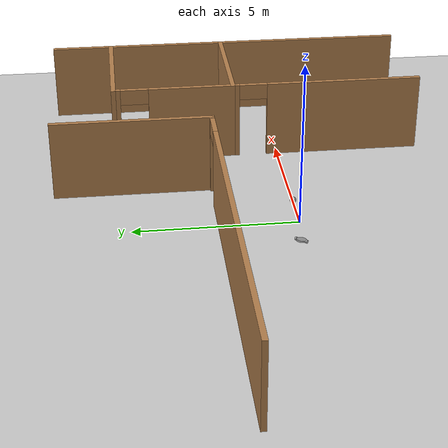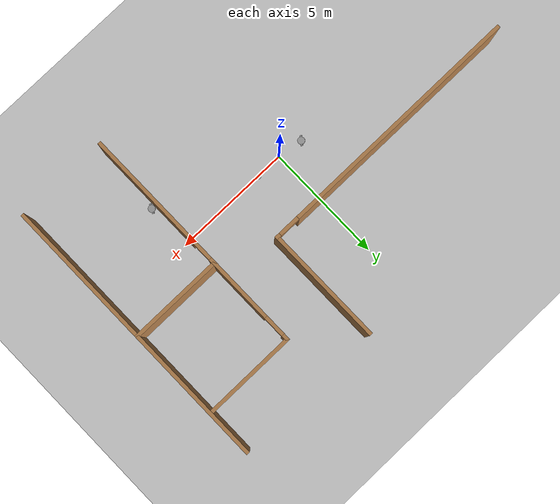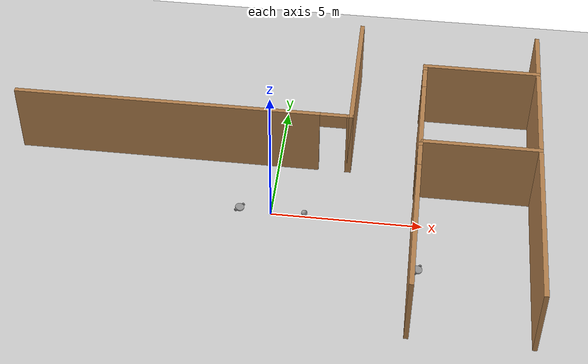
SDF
<sdf version="1.6">
 <world name="default">
  <model name="ground_plane">
   <static>1</static>
   <link name="link">
    <collision name="collision">
     <geometry><plane><normal>0 0 1</normal><size>100 100</size></plane></geometry>
     <surface>
      <contact><collide_bitmask>65535</collide_bitmask></contact>
      <friction><ode><mu>100</mu><mu2>50</mu2></ode></friction>
     </surface>
    </collision>
    <visual name="visual">
     <cast_shadows>0</cast_shadows>
     <geometry><plane><normal>0 0 1</normal><size>100 100</size></plane></geometry>
     <material>
      <script><uri>file://media/materials/scripts/gazebo.material</uri><name>Gazebo/Grey</name></script>
     </material>
    </visual>
   </link>
  </model>
  <model name="CleaningRobot">
   <link name="link_0">
    <pose>-0.003333 3e-06 4e-06 0 -0 0</pose>
    <inertial>
     <mass>1</mass>
     <inertia><ixx>0.145833</ixx><ixy>0</ixy><ixz>0</ixz><iyy>0.145833</iyy><iyz>0</iyz><izz>0.125</izz></inertia>
    </inertial>
    <visual name="visual">
     <geometry><cylinder><radius>0.15</radius><length>0.05</length></cylinder></geometry>
     <material>
      <lighting>1</lighting>
      <script><uri>file://media/materials/scripts/gazebo.material</uri><name>Gazebo/Grey</name></script>
      <shader type="pixel"><normal_map>__default__</normal_map></shader>
      <ambient>0.3 0.3 0.3 1</ambient>
      <diffuse>0.7 0.7 0.7 1</diffuse>
      <specular>0.01 0.01 0.01 1</specular>
      <emissive>0 0 0 1</emissive>
     </material>
    </visual>
    <collision name="collision">
     <geometry><cylinder><radius>0.15</radius><length>0.05</length></cylinder></geometry>
     <surface>
      <friction>
       <ode><mu>1</mu><mu2>1</mu2><fdir1>0 0 0</fdir1><slip1>0</slip1><slip2>0</slip2></ode>
       <torsional>
        <coefficient>1</coefficient>
        <patch_radius>0</patch_radius>
        <surface_radius>0</surface_radius>
        <use_patch_radius>1</use_patch_radius>
        <ode><slip>0</slip></ode>
       </torsional>
      </friction>
      <bounce><restitution_coefficient>0</restitution_coefficient><threshold>1e+06</threshold></bounce>
      <contact>
       <collide_without_contact>0</collide_without_contact>
       <collide_without_contact_bitmask>1</collide_without_contact_bitmask>
       <collide_bitmask>1</collide_bitmask>
       <ode>
        <soft_cfm>0</soft_cfm>
        <soft_erp>0.2</soft_erp>
        <kp>1e+13</kp>
        <kd>1</kd>
        <max_vel>0.01</max_vel>
        <min_depth>0</min_depth>
       </ode>
       <bullet>
        <split_impulse>1</split_impulse>
        <split_impulse_penetration_threshold>-0.01</split_impulse_penetration_threshold>
        <soft_cfm>0</soft_cfm>
        <soft_erp>0.2</soft_erp>
        <kp>1e+13</kp>
        <kd>1</kd>
       </bullet>
      </contact>
     </surface>
    </collision>
   </link>
   <link name="link_1">
    <pose>0.006667 -0.175011 -1e-05 1.5707 -0 0</pose>
    <inertial>
     <mass>1</mass>
     <inertia><ixx>0.145833</ixx><ixy>0</ixy><ixz>0</ixz><iyy>0.145833</iyy><iyz>0</iyz><izz>0.125</izz></inertia>
    </inertial>
    <visual name="visual">
     <geometry><cylinder><radius>0.05</radius><length>0.05</length></cylinder></geometry>
     <material>
      <lighting>1</lighting>
      <script><uri>file://media/materials/scripts/gazebo.material</uri><name>Gazebo/Grey</name></script>
      <shader type="pixel"><normal_map>__default__</normal_map></shader>
      <ambient>0.3 0.3 0.3 1</ambient>
      <diffuse>0.7 0.7 0.7 1</diffuse>
      <specular>0.01 0.01 0.01 1</specular>
      <emissive>0 0 0 1</emissive>
     </material>
    </visual>
    <collision name="collision">
     <geometry><cylinder><radius>0.05</radius><length>0.05</length></cylinder></geometry>
     <surface>
      <friction>
       <ode><mu>1</mu><mu2>1</mu2><fdir1>0 0 0</fdir1><slip1>0</slip1><slip2>0</slip2></ode>
       <torsional>
        <coefficient>1</coefficient>
        <patch_radius>0</patch_radius>
        <surface_radius>0</surface_radius>
        <use_patch_radius>1</use_patch_radius>
        <ode><slip>0</slip></ode>
       </torsional>
      </friction>
      <bounce><restitution_coefficient>0</restitution_coefficient><threshold>1e+06</threshold></bounce>
      <contact>
       <collide_without_contact>0</collide_without_contact>
       <collide_without_contact_bitmask>1</collide_without_contact_bitmask>
       <collide_bitmask>1</collide_bitmask>
       <ode>
        <soft_cfm>0</soft_cfm>
        <soft_erp>0.2</soft_erp>
        <kp>1e+13</kp>
        <kd>1</kd>
        <max_vel>0.01</max_vel>
        <min_depth>0</min_depth>
       </ode>
       <bullet>
        <split_impulse>1</split_impulse>
        <split_impulse_penetration_threshold>-0.01</split_impulse_penetration_threshold>
        <soft_cfm>0</soft_cfm>
        <soft_erp>0.2</soft_erp>
        <kp>1e+13</kp>
        <kd>1</kd>
       </bullet>
      </contact>
     </surface>
    </collision>
   </link>
   <link name="link_1_clone">
    <pose>-0.003333 0.175008 6e-06 1.5707 -0 0</pose>
    <inertial>
     <mass>1</mass>
     <inertia><ixx>0.145833</ixx><ixy>0</ixy><ixz>0</ixz><iyy>0.145833</iyy><iyz>0</iyz><izz>0.125</izz></inertia>
    </inertial>
    <visual name="visual">
     <geometry><cylinder><radius>0.05</radius><length>0.05</length></cylinder></geometry>
     <material>
      <lighting>1</lighting>
      <script><uri>file://media/materials/scripts/gazebo.material</uri><name>Gazebo/Grey</name></script>
      <shader type="pixel"><normal_map>__default__</normal_map></shader>
      <ambient>0.3 0.3 0.3 1</ambient>
      <diffuse>0.7 0.7 0.7 1</diffuse>
      <specular>0.01 0.01 0.01 1</specular>
      <emissive>0 0 0 1</emissive>
     </material>
    </visual>
    <collision name="collision">
     <geometry><cylinder><radius>0.05</radius><length>0.05</length></cylinder></geometry>
     <surface>
      <friction>
       <ode><mu>1</mu><mu2>1</mu2><fdir1>0 0 0</fdir1><slip1>0</slip1><slip2>0</slip2></ode>
       <torsional>
        <coefficient>1</coefficient>
        <patch_radius>0</patch_radius>
        <surface_radius>0</surface_radius>
        <use_patch_radius>1</use_patch_radius>
        <ode><slip>0</slip></ode>
       </torsional>
      </friction>
      <bounce><restitution_coefficient>0</restitution_coefficient><threshold>1e+06</threshold></bounce>
      <contact>
       <collide_without_contact>0</collide_without_contact>
       <collide_without_contact_bitmask>1</collide_without_contact_bitmask>
       <collide_bitmask>1</collide_bitmask>
       <ode>
        <soft_cfm>0</soft_cfm>
        <soft_erp>0.2</soft_erp>
        <kp>1e+13</kp>
        <kd>1</kd>
        <max_vel>0.01</max_vel>
        <min_depth>0</min_depth>
       </ode>
       <bullet>
        <split_impulse>1</split_impulse>
        <split_impulse_penetration_threshold>-0.01</split_impulse_penetration_threshold>
        <soft_cfm>0</soft_cfm>
        <soft_erp>0.2</soft_erp>
        <kp>1e+13</kp>
        <kd>1</kd>
       </bullet>
      </contact>
     </surface>
    </collision>
   </link>
   <joint name="link_0_JOINT_0" type="revolute">
    <parent>link_0</parent>
    <child>link_1</child>
    <axis>
     <xyz>0 0 1</xyz>
     <use_parent_model_frame>0</use_parent_model_frame>
     <limit>
      <lower>-1.79769e+308</lower>
      <upper>1.79769e+308</upper>
      <effort>-1</effort>
      <velocity>-1</velocity>
     </limit>
     <dynamics>
      <spring_reference>0</spring_reference>
      <spring_stiffness>0</spring_stiffness>
      <damping>0</damping>
     </dynamics>
    </axis>
    <physics>
     <ode><limit><cfm>0</cfm><erp>0.2</erp></limit><suspension><cfm>0</cfm><erp>0.2</erp></suspension></ode>
    </physics>
   </joint>
   <joint name="link_0_JOINT_1" type="revolute">
    <parent>link_0</parent>
    <child>link_1_clone</child>
    <axis>
     <xyz>0 0 1</xyz>
     <use_parent_model_frame>0</use_parent_model_frame>
     <limit>
      <lower>-1.79769e+308</lower>
      <upper>1.79769e+308</upper>
      <effort>-1</effort>
      <velocity>-1</velocity>
     </limit>
     <dynamics>
      <spring_reference>0</spring_reference>
      <spring_stiffness>0</spring_stiffness>
      <damping>0</damping>
     </dynamics>
    </axis>
    <physics>
     <ode><limit><cfm>0</cfm><erp>0.2</erp></limit><suspension><cfm>0</cfm><erp>0.2</erp></suspension></ode>
    </physics>
   </joint>
   <static>0</static>
   <pose>4.93887 -1.93202 0.049842 0.004688 -0.163996 2.67363</pose>
  </model>
  <model name="Building">
   <link name="Wall_20">
    <pose>12.425 0.0045 0 0 0 -1.5708</pose>
    <visual name="Wall_20_Visual">
     <pose>0 0 1.25 0 -0 0</pose>
     <geometry><box><size>12 0.15 2.5</size></box></geometry>
     <material>
      <script><uri>file://media/materials/scripts/gazebo.material</uri><name>Gazebo/Wood</name></script>
      <ambient>1 1 1 1</ambient>
      <shader type="pixel"/>
      <diffuse>1 1 1 1</diffuse>
      <specular>0.2 0.2 0.2 1</specular>
      <emissive>0 0 0 1</emissive>
     </material>
     <meta><layer>0</layer></meta>
    </visual>
    <collision name="Wall_20_Collision">
     <pose>0 0 1.25 0 -0 0</pose>
     <geometry><box><size>12 0.15 2.5</size></box></geometry>
     <surface>
      <friction>
       <ode><mu>1</mu><mu2>1</mu2><fdir1>0 0 0</fdir1><slip1>0</slip1><slip2>0</slip2></ode>
       <torsional>
        <coefficient>1</coefficient>
        <patch_radius>0</patch_radius>
        <surface_radius>0</surface_radius>
        <use_patch_radius>1</use_patch_radius>
        <ode><slip>0</slip></ode>
       </torsional>
      </friction>
      <bounce><restitution_coefficient>0</restitution_coefficient><threshold>1e+06</threshold></bounce>
      <contact>
       <collide_without_contact>0</collide_without_contact>
       <collide_without_contact_bitmask>1</collide_without_contact_bitmask>
       <collide_bitmask>1</collide_bitmask>
       <ode>
        <soft_cfm>0</soft_cfm>
        <soft_erp>0.2</soft_erp>
        <kp>1e+13</kp>
        <kd>1</kd>
        <max_vel>0.01</max_vel>
        <min_depth>0</min_depth>
       </ode>
       <bullet>
        <split_impulse>1</split_impulse>
        <split_impulse_penetration_threshold>-0.01</split_impulse_penetration_threshold>
        <soft_cfm>0</soft_cfm>
        <soft_erp>0.2</soft_erp>
        <kp>1e+13</kp>
        <kd>1</kd>
       </bullet>
      </contact>
     </surface>
    </collision>
   </link>
   <link name="Wall_32">
    <pose>10.49 4.0205 0 0 -0 3.14159</pose>
    <visual name="Wall_32_Visual">
     <pose>0 0 1.25 0 -0 0</pose>
     <geometry><box><size>4 0.15 2.5</size></box></geometry>
     <material>
      <script><uri>file://media/materials/scripts/gazebo.material</uri><name>Gazebo/Wood</name></script>
      <ambient>1 1 1 1</ambient>
      <shader type="pixel"/>
      <diffuse>1 1 1 1</diffuse>
      <specular>0.2 0.2 0.2 1</specular>
      <emissive>0 0 0 1</emissive>
     </material>
     <meta><layer>0</layer></meta>
    </visual>
    <collision name="Wall_32_Collision">
     <pose>0 0 1.25 0 -0 0</pose>
     <geometry><box><size>4 0.15 2.5</size></box></geometry>
     <surface>
      <friction>
       <ode><mu>1</mu><mu2>1</mu2><fdir1>0 0 0</fdir1><slip1>0</slip1><slip2>0</slip2></ode>
       <torsional>
        <coefficient>1</coefficient>
        <patch_radius>0</patch_radius>
        <surface_radius>0</surface_radius>
        <use_patch_radius>1</use_patch_radius>
        <ode><slip>0</slip></ode>
       </torsional>
      </friction>
      <bounce><restitution_coefficient>0</restitution_coefficient><threshold>1e+06</threshold></bounce>
      <contact>
       <collide_without_contact>0</collide_without_contact>
       <collide_without_contact_bitmask>1</collide_without_contact_bitmask>
       <collide_bitmask>1</collide_bitmask>
       <ode>
        <soft_cfm>0</soft_cfm>
        <soft_erp>0.2</soft_erp>
        <kp>1e+13</kp>
        <kd>1</kd>
        <max_vel>0.01</max_vel>
        <min_depth>0</min_depth>
       </ode>
       <bullet>
        <split_impulse>1</split_impulse>
        <split_impulse_penetration_threshold>-0.01</split_impulse_penetration_threshold>
        <soft_cfm>0</soft_cfm>
        <soft_erp>0.2</soft_erp>
        <kp>1e+13</kp>
        <kd>1</kd>
       </bullet>
      </contact>
     </surface>
    </collision>
   </link>
   <link name="Wall_33">
    <pose>8.565 2.0955 0 0 0 -1.5708</pose>
    <visual name="Wall_33_Visual_2">
     <pose>-1.25392 0 2.25 0 -0 0</pose>
     <geometry><box><size>0.9 0.15 0.5</size></box></geometry>
     <material>
      <script><uri>file://media/materials/scripts/gazebo.material</uri><name>Gazebo/Wood</name></script>
      <ambient>1 1 1 1</ambient>
      <shader type="pixel"/>
      <diffuse>1 1 1 1</diffuse>
      <specular>0.2 0.2 0.2 1</specular>
      <emissive>0 0 0 1</emissive>
     </material>
     <meta><layer>0</layer></meta>
    </visual>
    <visual name="Wall_33_Visual_1">
     <pose>0.59804 0 1.25 0 -0 0</pose>
     <geometry><box><size>2.80392 0.15 2.5</size></box></geometry>
     <material>
      <script><uri>file://media/materials/scripts/gazebo.material</uri><name>Gazebo/Wood</name></script>
      <ambient>1 1 1 1</ambient>
      <shader type="pixel"/>
      <diffuse>1 1 1 1</diffuse>
      <specular>0.2 0.2 0.2 1</specular>
      <emissive>0 0 0 1</emissive>
     </material>
     <meta><layer>0</layer></meta>
    </visual>
    <visual name="Wall_33_Visual_0">
     <pose>-1.85196 0 1.25 0 -0 0</pose>
     <geometry><box><size>0.29608 0.15 2.5</size></box></geometry>
     <material>
      <script><uri>file://media/materials/scripts/gazebo.material</uri><name>Gazebo/Wood</name></script>
      <ambient>1 1 1 1</ambient>
      <shader type="pixel"/>
      <diffuse>1 1 1 1</diffuse>
      <specular>0.2 0.2 0.2 1</specular>
      <emissive>0 0 0 1</emissive>
     </material>
     <meta><layer>0</layer></meta>
    </visual>
    <collision name="Wall_33_Collision_0">
     <pose>-1.85196 0 1.25 0 -0 0</pose>
     <geometry><box><size>0.29608 0.15 2.5</size></box></geometry>
     <surface>
      <friction>
       <ode><mu>1</mu><mu2>1</mu2><fdir1>0 0 0</fdir1><slip1>0</slip1><slip2>0</slip2></ode>
       <torsional>
        <coefficient>1</coefficient>
        <patch_radius>0</patch_radius>
        <surface_radius>0</surface_radius>
        <use_patch_radius>1</use_patch_radius>
        <ode><slip>0</slip></ode>
       </torsional>
      </friction>
      <bounce><restitution_coefficient>0</restitution_coefficient><threshold>1e+06</threshold></bounce>
      <contact>
       <collide_without_contact>0</collide_without_contact>
       <collide_without_contact_bitmask>1</collide_without_contact_bitmask>
       <collide_bitmask>1</collide_bitmask>
       <ode>
        <soft_cfm>0</soft_cfm>
        <soft_erp>0.2</soft_erp>
        <kp>1e+13</kp>
        <kd>1</kd>
        <max_vel>0.01</max_vel>
        <min_depth>0</min_depth>
       </ode>
       <bullet>
        <split_impulse>1</split_impulse>
        <split_impulse_penetration_threshold>-0.01</split_impulse_penetration_threshold>
        <soft_cfm>0</soft_cfm>
        <soft_erp>0.2</soft_erp>
        <kp>1e+13</kp>
        <kd>1</kd>
       </bullet>
      </contact>
     </surface>
    </collision>
    <collision name="Wall_33_Collision_2">
     <pose>-1.25392 0 2.25 0 -0 0</pose>
     <geometry><box><size>0.9 0.15 0.5</size></box></geometry>
     <surface>
      <friction>
       <ode><mu>1</mu><mu2>1</mu2><fdir1>0 0 0</fdir1><slip1>0</slip1><slip2>0</slip2></ode>
       <torsional>
        <coefficient>1</coefficient>
        <patch_radius>0</patch_radius>
        <surface_radius>0</surface_radius>
        <use_patch_radius>1</use_patch_radius>
        <ode><slip>0</slip></ode>
       </torsional>
      </friction>
      <bounce><restitution_coefficient>0</restitution_coefficient><threshold>1e+06</threshold></bounce>
      <contact>
       <collide_without_contact>0</collide_without_contact>
       <collide_without_contact_bitmask>1</collide_without_contact_bitmask>
       <collide_bitmask>1</collide_bitmask>
       <ode>
        <soft_cfm>0</soft_cfm>
        <soft_erp>0.2</soft_erp>
        <kp>1e+13</kp>
        <kd>1</kd>
        <max_vel>0.01</max_vel>
        <min_depth>0</min_depth>
       </ode>
       <bullet>
        <split_impulse>1</split_impulse>
        <split_impulse_penetration_threshold>-0.01</split_impulse_penetration_threshold>
        <soft_cfm>0</soft_cfm>
        <soft_erp>0.2</soft_erp>
        <kp>1e+13</kp>
        <kd>1</kd>
       </bullet>
      </contact>
     </surface>
    </collision>
    <collision name="Wall_33_Collision_1">
     <pose>0.59804 0 1.25 0 -0 0</pose>
     <geometry><box><size>2.80392 0.15 2.5</size></box></geometry>
     <surface>
      <friction>
       <ode><mu>1</mu><mu2>1</mu2><fdir1>0 0 0</fdir1><slip1>0</slip1><slip2>0</slip2></ode>
       <torsional>
        <coefficient>1</coefficient>
        <patch_radius>0</patch_radius>
        <surface_radius>0</surface_radius>
        <use_patch_radius>1</use_patch_radius>
        <ode><slip>0</slip></ode>
       </torsional>
      </friction>
      <bounce><restitution_coefficient>0</restitution_coefficient><threshold>1e+06</threshold></bounce>
      <contact>
       <collide_without_contact>0</collide_without_contact>
       <collide_without_contact_bitmask>1</collide_without_contact_bitmask>
       <collide_bitmask>1</collide_bitmask>
       <ode>
        <soft_cfm>0</soft_cfm>
        <soft_erp>0.2</soft_erp>
        <kp>1e+13</kp>
        <kd>1</kd>
        <max_vel>0.01</max_vel>
        <min_depth>0</min_depth>
       </ode>
       <bullet>
        <split_impulse>1</split_impulse>
        <split_impulse_penetration_threshold>-0.01</split_impulse_penetration_threshold>
        <soft_cfm>0</soft_cfm>
        <soft_erp>0.2</soft_erp>
        <kp>1e+13</kp>
        <kd>1</kd>
       </bullet>
      </contact>
     </surface>
    </collision>
   </link>
   <link name="Wall_34">
    <pose>10.49 0.1705 0 0 -0 0</pose>
    <visual name="Wall_34_Visual">
     <pose>0 0 1.25 0 -0 0</pose>
     <geometry><box><size>4 0.15 2.5</size></box></geometry>
     <material>
      <script><uri>file://media/materials/scripts/gazebo.material</uri><name>Gazebo/Wood</name></script>
      <ambient>1 1 1 1</ambient>
      <shader type="pixel"/>
      <diffuse>1 1 1 1</diffuse>
      <specular>0.2 0.2 0.2 1</specular>
      <emissive>0 0 0 1</emissive>
     </material>
     <meta><layer>0</layer></meta>
    </visual>
    <collision name="Wall_34_Collision">
     <pose>0 0 1.25 0 -0 0</pose>
     <geometry><box><size>4 0.15 2.5</size></box></geometry>
     <surface>
      <friction>
       <ode><mu>1</mu><mu2>1</mu2><fdir1>0 0 0</fdir1><slip1>0</slip1><slip2>0</slip2></ode>
       <torsional>
        <coefficient>1</coefficient>
        <patch_radius>0</patch_radius>
        <surface_radius>0</surface_radius>
        <use_patch_radius>1</use_patch_radius>
        <ode><slip>0</slip></ode>
       </torsional>
      </friction>
      <bounce><restitution_coefficient>0</restitution_coefficient><threshold>1e+06</threshold></bounce>
      <contact>
       <collide_without_contact>0</collide_without_contact>
       <collide_without_contact_bitmask>1</collide_without_contact_bitmask>
       <collide_bitmask>1</collide_bitmask>
       <ode>
        <soft_cfm>0</soft_cfm>
        <soft_erp>0.2</soft_erp>
        <kp>1e+13</kp>
        <kd>1</kd>
        <max_vel>0.01</max_vel>
        <min_depth>0</min_depth>
       </ode>
       <bullet>
        <split_impulse>1</split_impulse>
        <split_impulse_penetration_threshold>-0.01</split_impulse_penetration_threshold>
        <soft_cfm>0</soft_cfm>
        <soft_erp>0.2</soft_erp>
        <kp>1e+13</kp>
        <kd>1</kd>
       </bullet>
      </contact>
     </surface>
    </collision>
   </link>
   <link name="Wall_38">
    <pose>8.565 -2.8795 0 0 0 -1.5708</pose>
    <visual name="Wall_38_Visual_0">
     <pose>-2.97805 0 1.25 0 -0 0</pose>
     <geometry><box><size>0.293894 0.15 2.5</size></box></geometry>
     <material>
      <script><uri>file://media/materials/scripts/gazebo.material</uri><name>Gazebo/Wood</name></script>
      <ambient>1 1 1 1</ambient>
      <shader type="pixel"/>
      <diffuse>1 1 1 1</diffuse>
      <specular>0.2 0.2 0.2 1</specular>
      <emissive>0 0 0 1</emissive>
     </material>
     <meta><layer>0</layer></meta>
    </visual>
    <visual name="Wall_38_Visual_2">
     <pose>-2.38111 0 2.25 0 -0 0</pose>
     <geometry><box><size>0.9 0.15 0.5</size></box></geometry>
     <material>
      <script><uri>file://media/materials/scripts/gazebo.material</uri><name>Gazebo/Wood</name></script>
      <ambient>1 1 1 1</ambient>
      <shader type="pixel"/>
      <diffuse>1 1 1 1</diffuse>
      <specular>0.2 0.2 0.2 1</specular>
      <emissive>0 0 0 1</emissive>
     </material>
     <meta><layer>0</layer></meta>
    </visual>
    <visual name="Wall_38_Visual_1">
     <pose>0.596947 0 1.25 0 -0 0</pose>
     <geometry><box><size>5.05611 0.15 2.5</size></box></geometry>
     <material>
      <script><uri>file://media/materials/scripts/gazebo.material</uri><name>Gazebo/Wood</name></script>
      <ambient>1 1 1 1</ambient>
      <shader type="pixel"/>
      <diffuse>1 1 1 1</diffuse>
      <specular>0.2 0.2 0.2 1</specular>
      <emissive>0 0 0 1</emissive>
     </material>
     <meta><layer>0</layer></meta>
    </visual>
    <collision name="Wall_38_Collision_1">
     <pose>0.596947 0 1.25 0 -0 0</pose>
     <geometry><box><size>5.05611 0.15 2.5</size></box></geometry>
     <surface>
      <friction>
       <ode><mu>1</mu><mu2>1</mu2><fdir1>0 0 0</fdir1><slip1>0</slip1><slip2>0</slip2></ode>
       <torsional>
        <coefficient>1</coefficient>
        <patch_radius>0</patch_radius>
        <surface_radius>0</surface_radius>
        <use_patch_radius>1</use_patch_radius>
        <ode><slip>0</slip></ode>
       </torsional>
      </friction>
      <bounce><restitution_coefficient>0</restitution_coefficient><threshold>1e+06</threshold></bounce>
      <contact>
       <collide_without_contact>0</collide_without_contact>
       <collide_without_contact_bitmask>1</collide_without_contact_bitmask>
       <collide_bitmask>1</collide_bitmask>
       <ode>
        <soft_cfm>0</soft_cfm>
        <soft_erp>0.2</soft_erp>
        <kp>1e+13</kp>
        <kd>1</kd>
        <max_vel>0.01</max_vel>
        <min_depth>0</min_depth>
       </ode>
       <bullet>
        <split_impulse>1</split_impulse>
        <split_impulse_penetration_threshold>-0.01</split_impulse_penetration_threshold>
        <soft_cfm>0</soft_cfm>
        <soft_erp>0.2</soft_erp>
        <kp>1e+13</kp>
        <kd>1</kd>
       </bullet>
      </contact>
     </surface>
    </collision>
    <collision name="Wall_38_Collision_2">
     <pose>-2.38111 0 2.25 0 -0 0</pose>
     <geometry><box><size>0.9 0.15 0.5</size></box></geometry>
     <surface>
      <friction>
       <ode><mu>1</mu><mu2>1</mu2><fdir1>0 0 0</fdir1><slip1>0</slip1><slip2>0</slip2></ode>
       <torsional>
        <coefficient>1</coefficient>
        <patch_radius>0</patch_radius>
        <surface_radius>0</surface_radius>
        <use_patch_radius>1</use_patch_radius>
        <ode><slip>0</slip></ode>
       </torsional>
      </friction>
      <bounce><restitution_coefficient>0</restitution_coefficient><threshold>1e+06</threshold></bounce>
      <contact>
       <collide_without_contact>0</collide_without_contact>
       <collide_without_contact_bitmask>1</collide_without_contact_bitmask>
       <collide_bitmask>1</collide_bitmask>
       <ode>
        <soft_cfm>0</soft_cfm>
        <soft_erp>0.2</soft_erp>
        <kp>1e+13</kp>
        <kd>1</kd>
        <max_vel>0.01</max_vel>
        <min_depth>0</min_depth>
       </ode>
       <bullet>
        <split_impulse>1</split_impulse>
        <split_impulse_penetration_threshold>-0.01</split_impulse_penetration_threshold>
        <soft_cfm>0</soft_cfm>
        <soft_erp>0.2</soft_erp>
        <kp>1e+13</kp>
        <kd>1</kd>
       </bullet>
      </contact>
     </surface>
    </collision>
    <collision name="Wall_38_Collision_0">
     <pose>-2.97805 0 1.25 0 -0 0</pose>
     <geometry><box><size>0.293894 0.15 2.5</size></box></geometry>
     <surface>
      <friction>
       <ode><mu>1</mu><mu2>1</mu2><fdir1>0 0 0</fdir1><slip1>0</slip1><slip2>0</slip2></ode>
       <torsional>
        <coefficient>1</coefficient>
        <patch_radius>0</patch_radius>
        <surface_radius>0</surface_radius>
        <use_patch_radius>1</use_patch_radius>
        <ode><slip>0</slip></ode>
       </torsional>
      </friction>
      <bounce><restitution_coefficient>0</restitution_coefficient><threshold>1e+06</threshold></bounce>
      <contact>
       <collide_without_contact>0</collide_without_contact>
       <collide_without_contact_bitmask>1</collide_without_contact_bitmask>
       <collide_bitmask>1</collide_bitmask>
       <ode>
        <soft_cfm>0</soft_cfm>
        <soft_erp>0.2</soft_erp>
        <kp>1e+13</kp>
        <kd>1</kd>
        <max_vel>0.01</max_vel>
        <min_depth>0</min_depth>
       </ode>
       <bullet>
        <split_impulse>1</split_impulse>
        <split_impulse_penetration_threshold>-0.01</split_impulse_penetration_threshold>
        <soft_cfm>0</soft_cfm>
        <soft_erp>0.2</soft_erp>
        <kp>1e+13</kp>
        <kd>1</kd>
       </bullet>
      </contact>
     </surface>
    </collision>
   </link>
   <link name="Wall_65">
    <pose>0.564 1.0795 0 0 -0 0</pose>
    <visual name="Wall_65_Visual_0">
     <pose>-0.558207 0 1.25 0 -0 0</pose>
     <geometry><box><size>10.3836 0.15 2.5</size></box></geometry>
     <material>
      <script><uri>file://media/materials/scripts/gazebo.material</uri><name>Gazebo/Wood</name></script>
      <ambient>1 1 1 1</ambient>
      <shader type="pixel"/>
      <diffuse>1 1 1 1</diffuse>
      <specular>0.2 0.2 0.2 1</specular>
      <emissive>0 0 0 1</emissive>
     </material>
     <meta><layer>0</layer></meta>
    </visual>
    <visual name="Wall_65_Visual_1">
     <pose>5.64179 0 1.25 0 -0 0</pose>
     <geometry><box><size>0.216415 0.15 2.5</size></box></geometry>
     <material>
      <script><uri>file://media/materials/scripts/gazebo.material</uri><name>Gazebo/Wood</name></script>
      <ambient>1 1 1 1</ambient>
      <shader type="pixel"/>
      <diffuse>1 1 1 1</diffuse>
      <specular>0.2 0.2 0.2 1</specular>
      <emissive>0 0 0 1</emissive>
     </material>
     <meta><layer>0</layer></meta>
    </visual>
    <visual name="Wall_65_Visual_2">
     <pose>5.08359 0 2.25 0 -0 0</pose>
     <geometry><box><size>0.9 0.15 0.5</size></box></geometry>
     <material>
      <script><uri>file://media/materials/scripts/gazebo.material</uri><name>Gazebo/Wood</name></script>
      <ambient>1 1 1 1</ambient>
      <shader type="pixel"/>
      <diffuse>1 1 1 1</diffuse>
      <specular>0.2 0.2 0.2 1</specular>
      <emissive>0 0 0 1</emissive>
     </material>
     <meta><layer>0</layer></meta>
    </visual>
    <collision name="Wall_65_Collision_0">
     <pose>-0.558207 0 1.25 0 -0 0</pose>
     <geometry><box><size>10.3836 0.15 2.5</size></box></geometry>
     <surface>
      <friction>
       <ode><mu>1</mu><mu2>1</mu2><fdir1>0 0 0</fdir1><slip1>0</slip1><slip2>0</slip2></ode>
       <torsional>
        <coefficient>1</coefficient>
        <patch_radius>0</patch_radius>
        <surface_radius>0</surface_radius>
        <use_patch_radius>1</use_patch_radius>
        <ode><slip>0</slip></ode>
       </torsional>
      </friction>
      <bounce><restitution_coefficient>0</restitution_coefficient><threshold>1e+06</threshold></bounce>
      <contact>
       <collide_without_contact>0</collide_without_contact>
       <collide_without_contact_bitmask>1</collide_without_contact_bitmask>
       <collide_bitmask>1</collide_bitmask>
       <ode>
        <soft_cfm>0</soft_cfm>
        <soft_erp>0.2</soft_erp>
        <kp>1e+13</kp>
        <kd>1</kd>
        <max_vel>0.01</max_vel>
        <min_depth>0</min_depth>
       </ode>
       <bullet>
        <split_impulse>1</split_impulse>
        <split_impulse_penetration_threshold>-0.01</split_impulse_penetration_threshold>
        <soft_cfm>0</soft_cfm>
        <soft_erp>0.2</soft_erp>
        <kp>1e+13</kp>
        <kd>1</kd>
       </bullet>
      </contact>
     </surface>
    </collision>
    <collision name="Wall_65_Collision_1">
     <pose>5.64179 0 1.25 0 -0 0</pose>
     <geometry><box><size>0.216415 0.15 2.5</size></box></geometry>
     <surface>
      <friction>
       <ode><mu>1</mu><mu2>1</mu2><fdir1>0 0 0</fdir1><slip1>0</slip1><slip2>0</slip2></ode>
       <torsional>
        <coefficient>1</coefficient>
        <patch_radius>0</patch_radius>
        <surface_radius>0</surface_radius>
        <use_patch_radius>1</use_patch_radius>
        <ode><slip>0</slip></ode>
       </torsional>
      </friction>
      <bounce><restitution_coefficient>0</restitution_coefficient><threshold>1e+06</threshold></bounce>
      <contact>
       <collide_without_contact>0</collide_without_contact>
       <collide_without_contact_bitmask>1</collide_without_contact_bitmask>
       <collide_bitmask>1</collide_bitmask>
       <ode>
        <soft_cfm>0</soft_cfm>
        <soft_erp>0.2</soft_erp>
        <kp>1e+13</kp>
        <kd>1</kd>
        <max_vel>0.01</max_vel>
        <min_depth>0</min_depth>
       </ode>
       <bullet>
        <split_impulse>1</split_impulse>
        <split_impulse_penetration_threshold>-0.01</split_impulse_penetration_threshold>
        <soft_cfm>0</soft_cfm>
        <soft_erp>0.2</soft_erp>
        <kp>1e+13</kp>
        <kd>1</kd>
       </bullet>
      </contact>
     </surface>
    </collision>
    <collision name="Wall_65_Collision_2">
     <pose>5.08359 0 2.25 0 -0 0</pose>
     <geometry><box><size>0.9 0.15 0.5</size></box></geometry>
     <surface>
      <friction>
       <ode><mu>1</mu><mu2>1</mu2><fdir1>0 0 0</fdir1><slip1>0</slip1><slip2>0</slip2></ode>
       <torsional>
        <coefficient>1</coefficient>
        <patch_radius>0</patch_radius>
        <surface_radius>0</surface_radius>
        <use_patch_radius>1</use_patch_radius>
        <ode><slip>0</slip></ode>
       </torsional>
      </friction>
      <bounce><restitution_coefficient>0</restitution_coefficient><threshold>1e+06</threshold></bounce>
      <contact>
       <collide_without_contact>0</collide_without_contact>
       <collide_without_contact_bitmask>1</collide_without_contact_bitmask>
       <collide_bitmask>1</collide_bitmask>
       <ode>
        <soft_cfm>0</soft_cfm>
        <soft_erp>0.2</soft_erp>
        <kp>1e+13</kp>
        <kd>1</kd>
        <max_vel>0.01</max_vel>
        <min_depth>0</min_depth>
       </ode>
       <bullet>
        <split_impulse>1</split_impulse>
        <split_impulse_penetration_threshold>-0.01</split_impulse_penetration_threshold>
        <soft_cfm>0</soft_cfm>
        <soft_erp>0.2</soft_erp>
        <kp>1e+13</kp>
        <kd>1</kd>
       </bullet>
      </contact>
     </surface>
    </collision>
   </link>
   <link name="Wall_66">
    <pose>6.239 3.5045 0 0 -0 1.5708</pose>
    <visual name="Wall_66_Visual">
     <pose>0 0 1.25 0 -0 0</pose>
     <geometry><box><size>5 0.15 2.5</size></box></geometry>
     <material>
      <script><uri>file://media/materials/scripts/gazebo.material</uri><name>Gazebo/Wood</name></script>
      <ambient>1 1 1 1</ambient>
      <shader type="pixel"/>
      <diffuse>1 1 1 1</diffuse>
      <specular>0.2 0.2 0.2 1</specular>
      <emissive>0 0 0 1</emissive>
     </material>
     <meta><layer>0</layer></meta>
    </visual>
    <collision name="Wall_66_Collision">
     <pose>0 0 1.25 0 -0 0</pose>
     <geometry><box><size>5 0.15 2.5</size></box></geometry>
     <surface>
      <friction>
       <ode><mu>1</mu><mu2>1</mu2><fdir1>0 0 0</fdir1><slip1>0</slip1><slip2>0</slip2></ode>
       <torsional>
        <coefficient>1</coefficient>
        <patch_radius>0</patch_radius>
        <surface_radius>0</surface_radius>
        <use_patch_radius>1</use_patch_radius>
        <ode><slip>0</slip></ode>
       </torsional>
      </friction>
      <bounce><restitution_coefficient>0</restitution_coefficient><threshold>1e+06</threshold></bounce>
      <contact>
       <collide_without_contact>0</collide_without_contact>
       <collide_without_contact_bitmask>1</collide_without_contact_bitmask>
       <collide_bitmask>1</collide_bitmask>
       <ode>
        <soft_cfm>0</soft_cfm>
        <soft_erp>0.2</soft_erp>
        <kp>1e+13</kp>
        <kd>1</kd>
        <max_vel>0.01</max_vel>
        <min_depth>0</min_depth>
       </ode>
       <bullet>
        <split_impulse>1</split_impulse>
        <split_impulse_penetration_threshold>-0.01</split_impulse_penetration_threshold>
        <soft_cfm>0</soft_cfm>
        <soft_erp>0.2</soft_erp>
        <kp>1e+13</kp>
        <kd>1</kd>
       </bullet>
      </contact>
     </surface>
    </collision>
   </link>
   <static>1</static>
   <pose>-3.85028 1.2942 0 0 -0 0</pose>
  </model>
  <model name="CleaningRobot_clone">
   <link name="link_0">
    <pose>-0.003333 3e-06 4e-06 0 -0 0</pose>
    <inertial>
     <mass>1</mass>
     <inertia><ixx>0.145833</ixx><ixy>0</ixy><ixz>0</ixz><iyy>0.145833</iyy><iyz>0</iyz><izz>0.125</izz></inertia>
    </inertial>
    <visual name="visual">
     <geometry><cylinder><radius>0.15</radius><length>0.05</length></cylinder></geometry>
     <material>
      <lighting>1</lighting>
      <script><uri>file://media/materials/scripts/gazebo.material</uri><name>Gazebo/Grey</name></script>
      <shader type="pixel"><normal_map>__default__</normal_map></shader>
      <ambient>0.3 0.3 0.3 1</ambient>
      <diffuse>0.7 0.7 0.7 1</diffuse>
      <specular>0.01 0.01 0.01 1</specular>
      <emissive>0 0 0 1</emissive>
     </material>
    </visual>
    <collision name="collision">
     <geometry><cylinder><radius>0.15</radius><length>0.05</length></cylinder></geometry>
     <surface>
      <friction>
       <ode><mu>1</mu><mu2>1</mu2><fdir1>0 0 0</fdir1><slip1>0</slip1><slip2>0</slip2></ode>
       <torsional>
        <coefficient>1</coefficient>
        <patch_radius>0</patch_radius>
        <surface_radius>0</surface_radius>
        <use_patch_radius>1</use_patch_radius>
        <ode><slip>0</slip></ode>
       </torsional>
      </friction>
      <bounce><restitution_coefficient>0</restitution_coefficient><threshold>1e+06</threshold></bounce>
      <contact>
       <collide_without_contact>0</collide_without_contact>
       <collide_without_contact_bitmask>1</collide_without_contact_bitmask>
       <collide_bitmask>1</collide_bitmask>
       <ode>
        <soft_cfm>0</soft_cfm>
        <soft_erp>0.2</soft_erp>
        <kp>1e+13</kp>
        <kd>1</kd>
        <max_vel>0.01</max_vel>
        <min_depth>0</min_depth>
       </ode>
       <bullet>
        <split_impulse>1</split_impulse>
        <split_impulse_penetration_threshold>-0.01</split_impulse_penetration_threshold>
        <soft_cfm>0</soft_cfm>
        <soft_erp>0.2</soft_erp>
        <kp>1e+13</kp>
        <kd>1</kd>
       </bullet>
      </contact>
     </surface>
    </collision>
   </link>
   <link name="link_1">
    <pose>0.006667 -0.175011 -1e-05 1.5707 -0 0</pose>
    <inertial>
     <mass>1</mass>
     <inertia><ixx>0.145833</ixx><ixy>0</ixy><ixz>0</ixz><iyy>0.145833</iyy><iyz>0</iyz><izz>0.125</izz></inertia>
    </inertial>
    <visual name="visual">
     <geometry><cylinder><radius>0.05</radius><length>0.05</length></cylinder></geometry>
     <material>
      <lighting>1</lighting>
      <script><uri>file://media/materials/scripts/gazebo.material</uri><name>Gazebo/Grey</name></script>
      <shader type="pixel"><normal_map>__default__</normal_map></shader>
      <ambient>0.3 0.3 0.3 1</ambient>
      <diffuse>0.7 0.7 0.7 1</diffuse>
      <specular>0.01 0.01 0.01 1</specular>
      <emissive>0 0 0 1</emissive>
     </material>
    </visual>
    <collision name="collision">
     <geometry><cylinder><radius>0.05</radius><length>0.05</length></cylinder></geometry>
     <surface>
      <friction>
       <ode><mu>1</mu><mu2>1</mu2><fdir1>0 0 0</fdir1><slip1>0</slip1><slip2>0</slip2></ode>
       <torsional>
        <coefficient>1</coefficient>
        <patch_radius>0</patch_radius>
        <surface_radius>0</surface_radius>
        <use_patch_radius>1</use_patch_radius>
        <ode><slip>0</slip></ode>
       </torsional>
      </friction>
      <bounce><restitution_coefficient>0</restitution_coefficient><threshold>1e+06</threshold></bounce>
      <contact>
       <collide_without_contact>0</collide_without_contact>
       <collide_without_contact_bitmask>1</collide_without_contact_bitmask>
       <collide_bitmask>1</collide_bitmask>
       <ode>
        <soft_cfm>0</soft_cfm>
        <soft_erp>0.2</soft_erp>
        <kp>1e+13</kp>
        <kd>1</kd>
        <max_vel>0.01</max_vel>
        <min_depth>0</min_depth>
       </ode>
       <bullet>
        <split_impulse>1</split_impulse>
        <split_impulse_penetration_threshold>-0.01</split_impulse_penetration_threshold>
        <soft_cfm>0</soft_cfm>
        <soft_erp>0.2</soft_erp>
        <kp>1e+13</kp>
        <kd>1</kd>
       </bullet>
      </contact>
     </surface>
    </collision>
   </link>
   <link name="link_1_clone">
    <pose>-0.003333 0.175008 6e-06 1.5707 -0 0</pose>
    <inertial>
     <mass>1</mass>
     <inertia><ixx>0.145833</ixx><ixy>0</ixy><ixz>0</ixz><iyy>0.145833</iyy><iyz>0</iyz><izz>0.125</izz></inertia>
    </inertial>
    <visual name="visual">
     <geometry><cylinder><radius>0.05</radius><length>0.05</length></cylinder></geometry>
     <material>
      <lighting>1</lighting>
      <script><uri>file://media/materials/scripts/gazebo.material</uri><name>Gazebo/Grey</name></script>
      <shader type="pixel"><normal_map>__default__</normal_map></shader>
      <ambient>0.3 0.3 0.3 1</ambient>
      <diffuse>0.7 0.7 0.7 1</diffuse>
      <specular>0.01 0.01 0.01 1</specular>
      <emissive>0 0 0 1</emissive>
     </material>
    </visual>
    <collision name="collision">
     <geometry><cylinder><radius>0.05</radius><length>0.05</length></cylinder></geometry>
     <surface>
      <friction>
       <ode><mu>1</mu><mu2>1</mu2><fdir1>0 0 0</fdir1><slip1>0</slip1><slip2>0</slip2></ode>
       <torsional>
        <coefficient>1</coefficient>
        <patch_radius>0</patch_radius>
        <surface_radius>0</surface_radius>
        <use_patch_radius>1</use_patch_radius>
        <ode><slip>0</slip></ode>
       </torsional>
      </friction>
      <bounce><restitution_coefficient>0</restitution_coefficient><threshold>1e+06</threshold></bounce>
      <contact>
       <collide_without_contact>0</collide_without_contact>
       <collide_without_contact_bitmask>1</collide_without_contact_bitmask>
       <collide_bitmask>1</collide_bitmask>
       <ode>
        <soft_cfm>0</soft_cfm>
        <soft_erp>0.2</soft_erp>
        <kp>1e+13</kp>
        <kd>1</kd>
        <max_vel>0.01</max_vel>
        <min_depth>0</min_depth>
       </ode>
       <bullet>
        <split_impulse>1</split_impulse>
        <split_impulse_penetration_threshold>-0.01</split_impulse_penetration_threshold>
        <soft_cfm>0</soft_cfm>
        <soft_erp>0.2</soft_erp>
        <kp>1e+13</kp>
        <kd>1</kd>
       </bullet>
      </contact>
     </surface>
    </collision>
   </link>
   <joint name="link_0_JOINT_0" type="revolute">
    <parent>link_0</parent>
    <child>link_1</child>
    <axis>
     <xyz>0 0 1</xyz>
     <use_parent_model_frame>0</use_parent_model_frame>
     <limit>
      <lower>-1.79769e+308</lower>
      <upper>1.79769e+308</upper>
      <effort>-1</effort>
      <velocity>-1</velocity>
     </limit>
     <dynamics>
      <spring_reference>0</spring_reference>
      <spring_stiffness>0</spring_stiffness>
      <damping>0</damping>
     </dynamics>
    </axis>
    <physics>
     <ode><limit><cfm>0</cfm><erp>0.2</erp></limit><suspension><cfm>0</cfm><erp>0.2</erp></suspension></ode>
    </physics>
   </joint>
   <joint name="link_0_JOINT_1" type="revolute">
    <parent>link_0</parent>
    <child>link_1_clone</child>
    <axis>
     <xyz>0 0 1</xyz>
     <use_parent_model_frame>0</use_parent_model_frame>
     <limit>
      <lower>-1.79769e+308</lower>
      <upper>1.79769e+308</upper>
      <effort>-1</effort>
      <velocity>-1</velocity>
     </limit>
     <dynamics>
      <spring_reference>0</spring_reference>
      <spring_stiffness>0</spring_stiffness>
      <damping>0</damping>
     </dynamics>
    </axis>
    <physics>
     <ode><limit><cfm>0</cfm><erp>0.2</erp></limit><suspension><cfm>0</cfm><erp>0.2</erp></suspension></ode>
    </physics>
   </joint>
   <static>0</static>
   <pose>-1.07393 0.143348 0.049841 0.004714 -0.164924 2.44946</pose>
  </model>
  <model name="my_ball">
   <link name="link_0">
    <inertial>
     <mass>1</mass>
     <inertia><ixx>0.1</ixx><ixy>0</ixy><ixz>0</ixz><iyy>0.1</iyy><iyz>0</iyz><izz>0.1</izz></inertia>
    </inertial>
    <visual name="visual">
     <geometry><sphere><radius>0.1</radius></sphere></geometry>
     <material>
      <lighting>1</lighting>
      <script><uri>file://media/materials/scripts/gazebo.material</uri><name>Gazebo/Grey</name></script>
      <shader type="pixel"><normal_map>__default__</normal_map></shader>
      <ambient>1 1 1 1</ambient>
      <diffuse>1 1 1 1</diffuse>
      <specular>1 1 1 1</specular>
      <emissive>1 1 1 1</emissive>
     </material>
    </visual>
    <collision name="collision">
     <geometry><sphere><radius>0.1</radius></sphere></geometry>
     <surface>
      <friction>
       <ode><mu>1</mu><mu2>1</mu2><fdir1>0 0 0</fdir1><slip1>0</slip1><slip2>0</slip2></ode>
       <torsional>
        <coefficient>1</coefficient>
        <patch_radius>0</patch_radius>
        <surface_radius>0</surface_radius>
        <use_patch_radius>1</use_patch_radius>
        <ode><slip>0</slip></ode>
       </torsional>
      </friction>
      <bounce><restitution_coefficient>0</restitution_coefficient><threshold>1e+06</threshold></bounce>
      <contact>
       <collide_without_contact>0</collide_without_contact>
       <collide_without_contact_bitmask>1</collide_without_contact_bitmask>
       <collide_bitmask>1</collide_bitmask>
       <ode>
        <soft_cfm>0</soft_cfm>
        <soft_erp>0.2</soft_erp>
        <kp>1e+13</kp>
        <kd>1</kd>
        <max_vel>0.01</max_vel>
        <min_depth>0</min_depth>
       </ode>
       <bullet>
        <split_impulse>1</split_impulse>
        <split_impulse_penetration_threshold>-0.01</split_impulse_penetration_threshold>
        <soft_cfm>0</soft_cfm>
        <soft_erp>0.2</soft_erp>
        <kp>1e+13</kp>
        <kd>1</kd>
       </bullet>
      </contact>
     </surface>
    </collision>
   </link>
   <static>0</static>
   <pose>1.11077 0.029152 0.153848 0 -0 0</pose>
  </model>
 </world>
</sdf>
